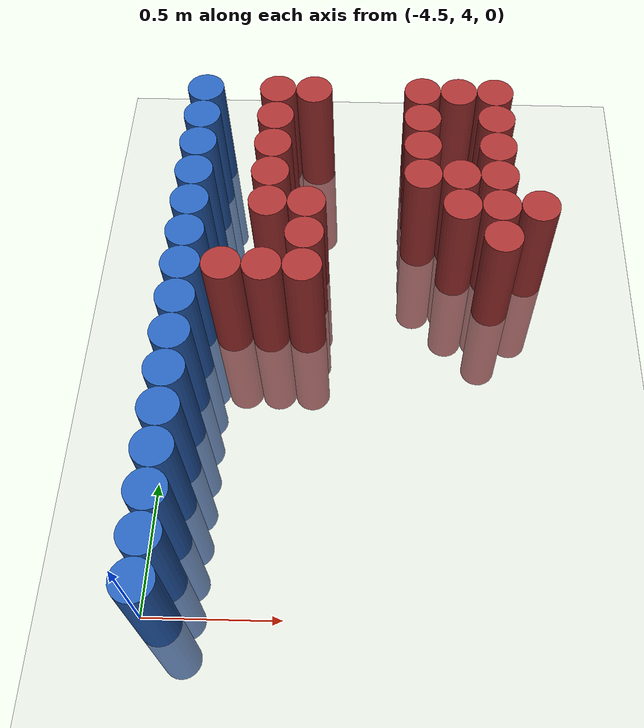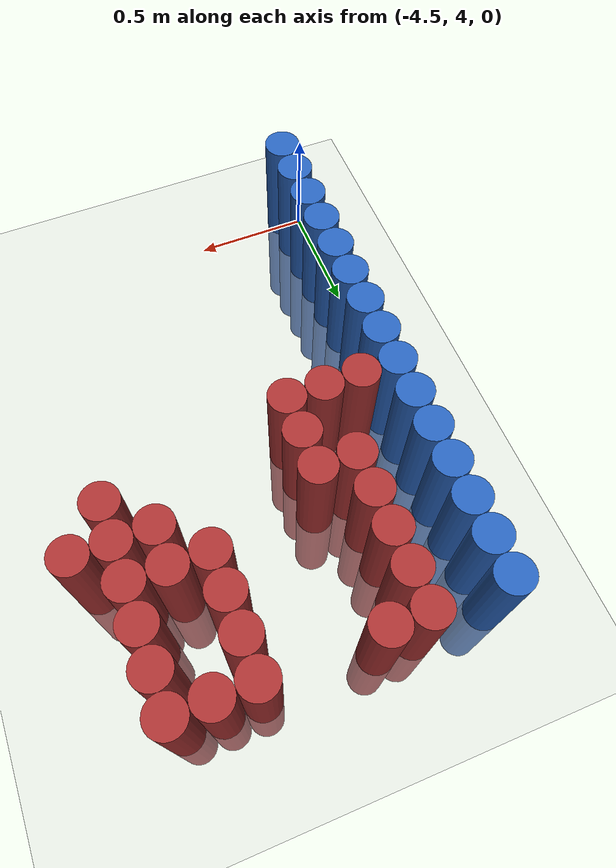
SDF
<sdf version="1.6">
 <world name="default">
  <model name="ground_plane">
   <static>1</static>
   <link name="link">
    <collision name="collision">
     <geometry><plane><normal>0 0 1</normal><size>100 100</size></plane></geometry>
     <surface><friction><ode><mu>100</mu><mu2>50</mu2></ode></friction></surface>
    </collision>
    <visual name="visual">
     <cast_shadows>0</cast_shadows>
     <geometry><plane><normal>0 0 1</normal><size>100 100</size></plane></geometry>
     <material>
      <script><uri>file://media/materials/scripts/gazebo.material</uri><name>Gazebo/Grey</name></script>
     </material>
    </visual>
   </link>
  </model>
  <model name="unit_cylinder_81">
   <static>1</static>
   <pose>-4.425000 3.975000 0.000000 0.000000 0.000000 0.000000</pose>
   <link name="link">
    <inertial>
     <mass>1</mass>
     <inertia><ixx>0.145833</ixx><ixy>0</ixy><ixz>0</ixz><iyy>0.145833</iyy><iyz>0</iyz><izz>0.125</izz></inertia>
    </inertial>
    <collision name="collision">
     <geometry><cylinder><radius>0.075000</radius><length>1</length></cylinder></geometry>
    </collision>
    <visual name="visual">
     <geometry><cylinder><radius>0.075000</radius><length>1</length></cylinder></geometry>
     <material>
      <ambient>0.152000 0.379000 0.720000 1</ambient>
      <diffuse>0.152000 0.379000 0.720000 1</diffuse>
     </material>
     <material>
      <script><name>Gazebo/Grey</name><uri>file://media/materials/scripts/gazebo.material</uri></script>
     </material>
    </visual>
    <sensor name="sensor_contact" type="contact"><contact><collision>collision</collision></contact></sensor>
   </link>
   <plugin filename="gz-sim-touchplugin-system" name="gz::sim::systems::TouchPlugin">
    <target>robot</target>
    <namespace>robot</namespace>
    <time>0.001</time>
    <enabled>true</enabled>
   </plugin>
  </model>
  <model name="unit_cylinder_83">
   <static>1</static>
   <pose>-4.425000 4.125000 0.000000 0.000000 0.000000 0.000000</pose>
   <link name="link">
    <inertial>
     <mass>1</mass>
     <inertia><ixx>0.145833</ixx><ixy>0</ixy><ixz>0</ixz><iyy>0.145833</iyy><iyz>0</iyz><izz>0.125</izz></inertia>
    </inertial>
    <collision name="collision">
     <geometry><cylinder><radius>0.075000</radius><length>1</length></cylinder></geometry>
    </collision>
    <visual name="visual">
     <geometry><cylinder><radius>0.075000</radius><length>1</length></cylinder></geometry>
     <material>
      <ambient>0.152000 0.379000 0.720000 1</ambient>
      <diffuse>0.152000 0.379000 0.720000 1</diffuse>
     </material>
     <material>
      <script><name>Gazebo/Grey</name><uri>file://media/materials/scripts/gazebo.material</uri></script>
     </material>
    </visual>
    <sensor name="sensor_contact" type="contact"><contact><collision>collision</collision></contact></sensor>
   </link>
   <plugin filename="gz-sim-touchplugin-system" name="gz::sim::systems::TouchPlugin">
    <target>robot</target>
    <namespace>robot</namespace>
    <time>0.001</time>
    <enabled>true</enabled>
   </plugin>
  </model>
  <model name="unit_cylinder_85">
   <static>1</static>
   <pose>-4.425000 4.275000 0.000000 0.000000 0.000000 0.000000</pose>
   <link name="link">
    <inertial>
     <mass>1</mass>
     <inertia><ixx>0.145833</ixx><ixy>0</ixy><ixz>0</ixz><iyy>0.145833</iyy><iyz>0</iyz><izz>0.125</izz></inertia>
    </inertial>
    <collision name="collision">
     <geometry><cylinder><radius>0.075000</radius><length>1</length></cylinder></geometry>
    </collision>
    <visual name="visual">
     <geometry><cylinder><radius>0.075000</radius><length>1</length></cylinder></geometry>
     <material>
      <ambient>0.152000 0.379000 0.720000 1</ambient>
      <diffuse>0.152000 0.379000 0.720000 1</diffuse>
     </material>
     <material>
      <script><name>Gazebo/Grey</name><uri>file://media/materials/scripts/gazebo.material</uri></script>
     </material>
    </visual>
    <sensor name="sensor_contact" type="contact"><contact><collision>collision</collision></contact></sensor>
   </link>
   <plugin filename="gz-sim-touchplugin-system" name="gz::sim::systems::TouchPlugin">
    <target>robot</target>
    <namespace>robot</namespace>
    <time>0.001</time>
    <enabled>true</enabled>
   </plugin>
  </model>
  <model name="unit_cylinder_87">
   <static>1</static>
   <pose>-4.425000 4.425000 0.000000 0.000000 0.000000 0.000000</pose>
   <link name="link">
    <inertial>
     <mass>1</mass>
     <inertia><ixx>0.145833</ixx><ixy>0</ixy><ixz>0</ixz><iyy>0.145833</iyy><iyz>0</iyz><izz>0.125</izz></inertia>
    </inertial>
    <collision name="collision">
     <geometry><cylinder><radius>0.075000</radius><length>1</length></cylinder></geometry>
    </collision>
    <visual name="visual">
     <geometry><cylinder><radius>0.075000</radius><length>1</length></cylinder></geometry>
     <material>
      <ambient>0.152000 0.379000 0.720000 1</ambient>
      <diffuse>0.152000 0.379000 0.720000 1</diffuse>
     </material>
     <material>
      <script><name>Gazebo/Grey</name><uri>file://media/materials/scripts/gazebo.material</uri></script>
     </material>
    </visual>
    <sensor name="sensor_contact" type="contact"><contact><collision>collision</collision></contact></sensor>
   </link>
   <plugin filename="gz-sim-touchplugin-system" name="gz::sim::systems::TouchPlugin">
    <target>robot</target>
    <namespace>robot</namespace>
    <time>0.001</time>
    <enabled>true</enabled>
   </plugin>
  </model>
  <model name="unit_cylinder_89">
   <static>1</static>
   <pose>-4.425000 4.575000 0.000000 0.000000 0.000000 0.000000</pose>
   <link name="link">
    <inertial>
     <mass>1</mass>
     <inertia><ixx>0.145833</ixx><ixy>0</ixy><ixz>0</ixz><iyy>0.145833</iyy><iyz>0</iyz><izz>0.125</izz></inertia>
    </inertial>
    <collision name="collision">
     <geometry><cylinder><radius>0.075000</radius><length>1</length></cylinder></geometry>
    </collision>
    <visual name="visual">
     <geometry><cylinder><radius>0.075000</radius><length>1</length></cylinder></geometry>
     <material>
      <ambient>0.152000 0.379000 0.720000 1</ambient>
      <diffuse>0.152000 0.379000 0.720000 1</diffuse>
     </material>
     <material>
      <script><name>Gazebo/Grey</name><uri>file://media/materials/scripts/gazebo.material</uri></script>
     </material>
    </visual>
    <sensor name="sensor_contact" type="contact"><contact><collision>collision</collision></contact></sensor>
   </link>
   <plugin filename="gz-sim-touchplugin-system" name="gz::sim::systems::TouchPlugin">
    <target>robot</target>
    <namespace>robot</namespace>
    <time>0.001</time>
    <enabled>true</enabled>
   </plugin>
  </model>
  <model name="unit_cylinder_91">
   <static>1</static>
   <pose>-4.425000 4.725000 0.000000 0.000000 0.000000 0.000000</pose>
   <link name="link">
    <inertial>
     <mass>1</mass>
     <inertia><ixx>0.145833</ixx><ixy>0</ixy><ixz>0</ixz><iyy>0.145833</iyy><iyz>0</iyz><izz>0.125</izz></inertia>
    </inertial>
    <collision name="collision">
     <geometry><cylinder><radius>0.075000</radius><length>1</length></cylinder></geometry>
    </collision>
    <visual name="visual">
     <geometry><cylinder><radius>0.075000</radius><length>1</length></cylinder></geometry>
     <material>
      <ambient>0.152000 0.379000 0.720000 1</ambient>
      <diffuse>0.152000 0.379000 0.720000 1</diffuse>
     </material>
     <material>
      <script><name>Gazebo/Grey</name><uri>file://media/materials/scripts/gazebo.material</uri></script>
     </material>
    </visual>
    <sensor name="sensor_contact" type="contact"><contact><collision>collision</collision></contact></sensor>
   </link>
   <plugin filename="gz-sim-touchplugin-system" name="gz::sim::systems::TouchPlugin">
    <target>robot</target>
    <namespace>robot</namespace>
    <time>0.001</time>
    <enabled>true</enabled>
   </plugin>
  </model>
  <model name="unit_cylinder_93">
   <static>1</static>
   <pose>-4.425000 4.875000 0.000000 0.000000 0.000000 0.000000</pose>
   <link name="link">
    <inertial>
     <mass>1</mass>
     <inertia><ixx>0.145833</ixx><ixy>0</ixy><ixz>0</ixz><iyy>0.145833</iyy><iyz>0</iyz><izz>0.125</izz></inertia>
    </inertial>
    <collision name="collision">
     <geometry><cylinder><radius>0.075000</radius><length>1</length></cylinder></geometry>
    </collision>
    <visual name="visual">
     <geometry><cylinder><radius>0.075000</radius><length>1</length></cylinder></geometry>
     <material>
      <ambient>0.152000 0.379000 0.720000 1</ambient>
      <diffuse>0.152000 0.379000 0.720000 1</diffuse>
     </material>
     <material>
      <script><name>Gazebo/Grey</name><uri>file://media/materials/scripts/gazebo.material</uri></script>
     </material>
    </visual>
    <sensor name="sensor_contact" type="contact"><contact><collision>collision</collision></contact></sensor>
   </link>
   <plugin filename="gz-sim-touchplugin-system" name="gz::sim::systems::TouchPlugin">
    <target>robot</target>
    <namespace>robot</namespace>
    <time>0.001</time>
    <enabled>true</enabled>
   </plugin>
  </model>
  <model name="unit_cylinder_95">
   <static>1</static>
   <pose>-4.425000 5.025000 0.000000 0.000000 0.000000 0.000000</pose>
   <link name="link">
    <inertial>
     <mass>1</mass>
     <inertia><ixx>0.145833</ixx><ixy>0</ixy><ixz>0</ixz><iyy>0.145833</iyy><iyz>0</iyz><izz>0.125</izz></inertia>
    </inertial>
    <collision name="collision">
     <geometry><cylinder><radius>0.075000</radius><length>1</length></cylinder></geometry>
    </collision>
    <visual name="visual">
     <geometry><cylinder><radius>0.075000</radius><length>1</length></cylinder></geometry>
     <material>
      <ambient>0.152000 0.379000 0.720000 1</ambient>
      <diffuse>0.152000 0.379000 0.720000 1</diffuse>
     </material>
     <material>
      <script><name>Gazebo/Grey</name><uri>file://media/materials/scripts/gazebo.material</uri></script>
     </material>
    </visual>
    <sensor name="sensor_contact" type="contact"><contact><collision>collision</collision></contact></sensor>
   </link>
   <plugin filename="gz-sim-touchplugin-system" name="gz::sim::systems::TouchPlugin">
    <target>robot</target>
    <namespace>robot</namespace>
    <time>0.001</time>
    <enabled>true</enabled>
   </plugin>
  </model>
  <model name="unit_cylinder_96">
   <static>1</static>
   <pose>-4.425000 5.175000 0.000000 0.000000 0.000000 0.000000</pose>
   <link name="link">
    <inertial>
     <mass>1</mass>
     <inertia><ixx>0.145833</ixx><ixy>0</ixy><ixz>0</ixz><iyy>0.145833</iyy><iyz>0</iyz><izz>0.125</izz></inertia>
    </inertial>
    <collision name="collision">
     <geometry><cylinder><radius>0.075000</radius><length>1</length></cylinder></geometry>
    </collision>
    <visual name="visual">
     <geometry><cylinder><radius>0.075000</radius><length>1</length></cylinder></geometry>
     <material>
      <ambient>0.152000 0.379000 0.720000 1</ambient>
      <diffuse>0.152000 0.379000 0.720000 1</diffuse>
     </material>
     <material>
      <script><name>Gazebo/Grey</name><uri>file://media/materials/scripts/gazebo.material</uri></script>
     </material>
    </visual>
    <sensor name="sensor_contact" type="contact"><contact><collision>collision</collision></contact></sensor>
   </link>
   <plugin filename="gz-sim-touchplugin-system" name="gz::sim::systems::TouchPlugin">
    <target>robot</target>
    <namespace>robot</namespace>
    <time>0.001</time>
    <enabled>true</enabled>
   </plugin>
  </model>
  <model name="unit_cylinder_97">
   <static>1</static>
   <pose>-4.425000 5.325000 0.000000 0.000000 0.000000 0.000000</pose>
   <link name="link">
    <inertial>
     <mass>1</mass>
     <inertia><ixx>0.145833</ixx><ixy>0</ixy><ixz>0</ixz><iyy>0.145833</iyy><iyz>0</iyz><izz>0.125</izz></inertia>
    </inertial>
    <collision name="collision">
     <geometry><cylinder><radius>0.075000</radius><length>1</length></cylinder></geometry>
    </collision>
    <visual name="visual">
     <geometry><cylinder><radius>0.075000</radius><length>1</length></cylinder></geometry>
     <material>
      <ambient>0.152000 0.379000 0.720000 1</ambient>
      <diffuse>0.152000 0.379000 0.720000 1</diffuse>
     </material>
     <material>
      <script><name>Gazebo/Grey</name><uri>file://media/materials/scripts/gazebo.material</uri></script>
     </material>
    </visual>
    <sensor name="sensor_contact" type="contact"><contact><collision>collision</collision></contact></sensor>
   </link>
   <plugin filename="gz-sim-touchplugin-system" name="gz::sim::systems::TouchPlugin">
    <target>robot</target>
    <namespace>robot</namespace>
    <time>0.001</time>
    <enabled>true</enabled>
   </plugin>
  </model>
  <model name="unit_cylinder_98">
   <static>1</static>
   <pose>-4.425000 5.475000 0.000000 0.000000 0.000000 0.000000</pose>
   <link name="link">
    <inertial>
     <mass>1</mass>
     <inertia><ixx>0.145833</ixx><ixy>0</ixy><ixz>0</ixz><iyy>0.145833</iyy><iyz>0</iyz><izz>0.125</izz></inertia>
    </inertial>
    <collision name="collision">
     <geometry><cylinder><radius>0.075000</radius><length>1</length></cylinder></geometry>
    </collision>
    <visual name="visual">
     <geometry><cylinder><radius>0.075000</radius><length>1</length></cylinder></geometry>
     <material>
      <ambient>0.152000 0.379000 0.720000 1</ambient>
      <diffuse>0.152000 0.379000 0.720000 1</diffuse>
     </material>
     <material>
      <script><name>Gazebo/Grey</name><uri>file://media/materials/scripts/gazebo.material</uri></script>
     </material>
    </visual>
    <sensor name="sensor_contact" type="contact"><contact><collision>collision</collision></contact></sensor>
   </link>
   <plugin filename="gz-sim-touchplugin-system" name="gz::sim::systems::TouchPlugin">
    <target>robot</target>
    <namespace>robot</namespace>
    <time>0.001</time>
    <enabled>true</enabled>
   </plugin>
  </model>
  <model name="unit_cylinder_99">
   <static>1</static>
   <pose>-4.425000 5.625000 0.000000 0.000000 0.000000 0.000000</pose>
   <link name="link">
    <inertial>
     <mass>1</mass>
     <inertia><ixx>0.145833</ixx><ixy>0</ixy><ixz>0</ixz><iyy>0.145833</iyy><iyz>0</iyz><izz>0.125</izz></inertia>
    </inertial>
    <collision name="collision">
     <geometry><cylinder><radius>0.075000</radius><length>1</length></cylinder></geometry>
    </collision>
    <visual name="visual">
     <geometry><cylinder><radius>0.075000</radius><length>1</length></cylinder></geometry>
     <material>
      <ambient>0.152000 0.379000 0.720000 1</ambient>
      <diffuse>0.152000 0.379000 0.720000 1</diffuse>
     </material>
     <material>
      <script><name>Gazebo/Grey</name><uri>file://media/materials/scripts/gazebo.material</uri></script>
     </material>
    </visual>
    <sensor name="sensor_contact" type="contact"><contact><collision>collision</collision></contact></sensor>
   </link>
   <plugin filename="gz-sim-touchplugin-system" name="gz::sim::systems::TouchPlugin">
    <target>robot</target>
    <namespace>robot</namespace>
    <time>0.001</time>
    <enabled>true</enabled>
   </plugin>
  </model>
  <model name="unit_cylinder_100">
   <static>1</static>
   <pose>-4.425000 5.775000 0.000000 0.000000 0.000000 0.000000</pose>
   <link name="link">
    <inertial>
     <mass>1</mass>
     <inertia><ixx>0.145833</ixx><ixy>0</ixy><ixz>0</ixz><iyy>0.145833</iyy><iyz>0</iyz><izz>0.125</izz></inertia>
    </inertial>
    <collision name="collision">
     <geometry><cylinder><radius>0.075000</radius><length>1</length></cylinder></geometry>
    </collision>
    <visual name="visual">
     <geometry><cylinder><radius>0.075000</radius><length>1</length></cylinder></geometry>
     <material>
      <ambient>0.152000 0.379000 0.720000 1</ambient>
      <diffuse>0.152000 0.379000 0.720000 1</diffuse>
     </material>
     <material>
      <script><name>Gazebo/Grey</name><uri>file://media/materials/scripts/gazebo.material</uri></script>
     </material>
    </visual>
    <sensor name="sensor_contact" type="contact"><contact><collision>collision</collision></contact></sensor>
   </link>
   <plugin filename="gz-sim-touchplugin-system" name="gz::sim::systems::TouchPlugin">
    <target>robot</target>
    <namespace>robot</namespace>
    <time>0.001</time>
    <enabled>true</enabled>
   </plugin>
  </model>
  <model name="unit_cylinder_101">
   <static>1</static>
   <pose>-4.425000 5.925000 0.000000 0.000000 0.000000 0.000000</pose>
   <link name="link">
    <inertial>
     <mass>1</mass>
     <inertia><ixx>0.145833</ixx><ixy>0</ixy><ixz>0</ixz><iyy>0.145833</iyy><iyz>0</iyz><izz>0.125</izz></inertia>
    </inertial>
    <collision name="collision">
     <geometry><cylinder><radius>0.075000</radius><length>1</length></cylinder></geometry>
    </collision>
    <visual name="visual">
     <geometry><cylinder><radius>0.075000</radius><length>1</length></cylinder></geometry>
     <material>
      <ambient>0.152000 0.379000 0.720000 1</ambient>
      <diffuse>0.152000 0.379000 0.720000 1</diffuse>
     </material>
     <material>
      <script><name>Gazebo/Grey</name><uri>file://media/materials/scripts/gazebo.material</uri></script>
     </material>
    </visual>
    <sensor name="sensor_contact" type="contact"><contact><collision>collision</collision></contact></sensor>
   </link>
   <plugin filename="gz-sim-touchplugin-system" name="gz::sim::systems::TouchPlugin">
    <target>robot</target>
    <namespace>robot</namespace>
    <time>0.001</time>
    <enabled>true</enabled>
   </plugin>
  </model>
  <model name="unit_cylinder_102">
   <static>1</static>
   <pose>-4.425000 6.075000 0.000000 0.000000 0.000000 0.000000</pose>
   <link name="link">
    <inertial>
     <mass>1</mass>
     <inertia><ixx>0.145833</ixx><ixy>0</ixy><ixz>0</ixz><iyy>0.145833</iyy><iyz>0</iyz><izz>0.125</izz></inertia>
    </inertial>
    <collision name="collision">
     <geometry><cylinder><radius>0.075000</radius><length>1</length></cylinder></geometry>
    </collision>
    <visual name="visual">
     <geometry><cylinder><radius>0.075000</radius><length>1</length></cylinder></geometry>
     <material>
      <ambient>0.152000 0.379000 0.720000 1</ambient>
      <diffuse>0.152000 0.379000 0.720000 1</diffuse>
     </material>
     <material>
      <script><name>Gazebo/Grey</name><uri>file://media/materials/scripts/gazebo.material</uri></script>
     </material>
    </visual>
    <sensor name="sensor_contact" type="contact"><contact><collision>collision</collision></contact></sensor>
   </link>
   <plugin filename="gz-sim-touchplugin-system" name="gz::sim::systems::TouchPlugin">
    <target>robot</target>
    <namespace>robot</namespace>
    <time>0.001</time>
    <enabled>true</enabled>
   </plugin>
  </model>
  <model name="unit_cylinder_126">
   <static>1</static>
   <pose>-4.275000 5.175000 0.000000 0.000000 0.000000 0.000000</pose>
   <link name="link">
    <inertial>
     <mass>1</mass>
     <inertia><ixx>0.145833</ixx><ixy>0</ixy><ixz>0</ixz><iyy>0.145833</iyy><iyz>0</iyz><izz>0.125</izz></inertia>
    </inertial>
    <collision name="collision">
     <geometry><cylinder><radius>0.075000</radius><length>1</length></cylinder></geometry>
    </collision>
    <visual name="visual">
     <geometry><cylinder><radius>0.075000</radius><length>1</length></cylinder></geometry>
     <material>
      <ambient>0.648000 0.192000 0.192000 1</ambient>
      <diffuse>0.648000 0.192000 0.192000 1</diffuse>
     </material>
     <material>
      <script><name>Gazebo/Grey</name><uri>file://media/materials/scripts/gazebo.material</uri></script>
     </material>
    </visual>
    <sensor name="sensor_contact" type="contact"><contact><collision>collision</collision></contact></sensor>
   </link>
   <plugin filename="gz-sim-touchplugin-system" name="gz::sim::systems::TouchPlugin">
    <target>robot</target>
    <namespace>robot</namespace>
    <time>0.001</time>
    <enabled>true</enabled>
   </plugin>
  </model>
  <model name="unit_cylinder_138">
   <static>1</static>
   <pose>-4.125000 5.175000 0.000000 0.000000 0.000000 0.000000</pose>
   <link name="link">
    <inertial>
     <mass>1</mass>
     <inertia><ixx>0.145833</ixx><ixy>0</ixy><ixz>0</ixz><iyy>0.145833</iyy><iyz>0</iyz><izz>0.125</izz></inertia>
    </inertial>
    <collision name="collision">
     <geometry><cylinder><radius>0.075000</radius><length>1</length></cylinder></geometry>
    </collision>
    <visual name="visual">
     <geometry><cylinder><radius>0.075000</radius><length>1</length></cylinder></geometry>
     <material>
      <ambient>0.648000 0.192000 0.192000 1</ambient>
      <diffuse>0.648000 0.192000 0.192000 1</diffuse>
     </material>
     <material>
      <script><name>Gazebo/Grey</name><uri>file://media/materials/scripts/gazebo.material</uri></script>
     </material>
    </visual>
    <sensor name="sensor_contact" type="contact"><contact><collision>collision</collision></contact></sensor>
   </link>
   <plugin filename="gz-sim-touchplugin-system" name="gz::sim::systems::TouchPlugin">
    <target>robot</target>
    <namespace>robot</namespace>
    <time>0.001</time>
    <enabled>true</enabled>
   </plugin>
  </model>
  <model name="unit_cylinder_139">
   <static>1</static>
   <pose>-4.125000 5.475000 0.000000 0.000000 0.000000 0.000000</pose>
   <link name="link">
    <inertial>
     <mass>1</mass>
     <inertia><ixx>0.145833</ixx><ixy>0</ixy><ixz>0</ixz><iyy>0.145833</iyy><iyz>0</iyz><izz>0.125</izz></inertia>
    </inertial>
    <collision name="collision">
     <geometry><cylinder><radius>0.075000</radius><length>1</length></cylinder></geometry>
    </collision>
    <visual name="visual">
     <geometry><cylinder><radius>0.075000</radius><length>1</length></cylinder></geometry>
     <material>
      <ambient>0.648000 0.192000 0.192000 1</ambient>
      <diffuse>0.648000 0.192000 0.192000 1</diffuse>
     </material>
     <material>
      <script><name>Gazebo/Grey</name><uri>file://media/materials/scripts/gazebo.material</uri></script>
     </material>
    </visual>
    <sensor name="sensor_contact" type="contact"><contact><collision>collision</collision></contact></sensor>
   </link>
   <plugin filename="gz-sim-touchplugin-system" name="gz::sim::systems::TouchPlugin">
    <target>robot</target>
    <namespace>robot</namespace>
    <time>0.001</time>
    <enabled>true</enabled>
   </plugin>
  </model>
  <model name="unit_cylinder_140">
   <static>1</static>
   <pose>-4.125000 5.625000 0.000000 0.000000 0.000000 0.000000</pose>
   <link name="link">
    <inertial>
     <mass>1</mass>
     <inertia><ixx>0.145833</ixx><ixy>0</ixy><ixz>0</ixz><iyy>0.145833</iyy><iyz>0</iyz><izz>0.125</izz></inertia>
    </inertial>
    <collision name="collision">
     <geometry><cylinder><radius>0.075000</radius><length>1</length></cylinder></geometry>
    </collision>
    <visual name="visual">
     <geometry><cylinder><radius>0.075000</radius><length>1</length></cylinder></geometry>
     <material>
      <ambient>0.648000 0.192000 0.192000 1</ambient>
      <diffuse>0.648000 0.192000 0.192000 1</diffuse>
     </material>
     <material>
      <script><name>Gazebo/Grey</name><uri>file://media/materials/scripts/gazebo.material</uri></script>
     </material>
    </visual>
    <sensor name="sensor_contact" type="contact"><contact><collision>collision</collision></contact></sensor>
   </link>
   <plugin filename="gz-sim-touchplugin-system" name="gz::sim::systems::TouchPlugin">
    <target>robot</target>
    <namespace>robot</namespace>
    <time>0.001</time>
    <enabled>true</enabled>
   </plugin>
  </model>
  <model name="unit_cylinder_141">
   <static>1</static>
   <pose>-4.125000 5.775000 0.000000 0.000000 0.000000 0.000000</pose>
   <link name="link">
    <inertial>
     <mass>1</mass>
     <inertia><ixx>0.145833</ixx><ixy>0</ixy><ixz>0</ixz><iyy>0.145833</iyy><iyz>0</iyz><izz>0.125</izz></inertia>
    </inertial>
    <collision name="collision">
     <geometry><cylinder><radius>0.075000</radius><length>1</length></cylinder></geometry>
    </collision>
    <visual name="visual">
     <geometry><cylinder><radius>0.075000</radius><length>1</length></cylinder></geometry>
     <material>
      <ambient>0.648000 0.192000 0.192000 1</ambient>
      <diffuse>0.648000 0.192000 0.192000 1</diffuse>
     </material>
     <material>
      <script><name>Gazebo/Grey</name><uri>file://media/materials/scripts/gazebo.material</uri></script>
     </material>
    </visual>
    <sensor name="sensor_contact" type="contact"><contact><collision>collision</collision></contact></sensor>
   </link>
   <plugin filename="gz-sim-touchplugin-system" name="gz::sim::systems::TouchPlugin">
    <target>robot</target>
    <namespace>robot</namespace>
    <time>0.001</time>
    <enabled>true</enabled>
   </plugin>
  </model>
  <model name="unit_cylinder_142">
   <static>1</static>
   <pose>-4.125000 5.925000 0.000000 0.000000 0.000000 0.000000</pose>
   <link name="link">
    <inertial>
     <mass>1</mass>
     <inertia><ixx>0.145833</ixx><ixy>0</ixy><ixz>0</ixz><iyy>0.145833</iyy><iyz>0</iyz><izz>0.125</izz></inertia>
    </inertial>
    <collision name="collision">
     <geometry><cylinder><radius>0.075000</radius><length>1</length></cylinder></geometry>
    </collision>
    <visual name="visual">
     <geometry><cylinder><radius>0.075000</radius><length>1</length></cylinder></geometry>
     <material>
      <ambient>0.648000 0.192000 0.192000 1</ambient>
      <diffuse>0.648000 0.192000 0.192000 1</diffuse>
     </material>
     <material>
      <script><name>Gazebo/Grey</name><uri>file://media/materials/scripts/gazebo.material</uri></script>
     </material>
    </visual>
    <sensor name="sensor_contact" type="contact"><contact><collision>collision</collision></contact></sensor>
   </link>
   <plugin filename="gz-sim-touchplugin-system" name="gz::sim::systems::TouchPlugin">
    <target>robot</target>
    <namespace>robot</namespace>
    <time>0.001</time>
    <enabled>true</enabled>
   </plugin>
  </model>
  <model name="unit_cylinder_143">
   <static>1</static>
   <pose>-4.125000 6.075000 0.000000 0.000000 0.000000 0.000000</pose>
   <link name="link">
    <inertial>
     <mass>1</mass>
     <inertia><ixx>0.145833</ixx><ixy>0</ixy><ixz>0</ixz><iyy>0.145833</iyy><iyz>0</iyz><izz>0.125</izz></inertia>
    </inertial>
    <collision name="collision">
     <geometry><cylinder><radius>0.075000</radius><length>1</length></cylinder></geometry>
    </collision>
    <visual name="visual">
     <geometry><cylinder><radius>0.075000</radius><length>1</length></cylinder></geometry>
     <material>
      <ambient>0.648000 0.192000 0.192000 1</ambient>
      <diffuse>0.648000 0.192000 0.192000 1</diffuse>
     </material>
     <material>
      <script><name>Gazebo/Grey</name><uri>file://media/materials/scripts/gazebo.material</uri></script>
     </material>
    </visual>
    <sensor name="sensor_contact" type="contact"><contact><collision>collision</collision></contact></sensor>
   </link>
   <plugin filename="gz-sim-touchplugin-system" name="gz::sim::systems::TouchPlugin">
    <target>robot</target>
    <namespace>robot</namespace>
    <time>0.001</time>
    <enabled>true</enabled>
   </plugin>
  </model>
  <model name="unit_cylinder_150">
   <static>1</static>
   <pose>-3.975000 5.175000 0.000000 0.000000 0.000000 0.000000</pose>
   <link name="link">
    <inertial>
     <mass>1</mass>
     <inertia><ixx>0.145833</ixx><ixy>0</ixy><ixz>0</ixz><iyy>0.145833</iyy><iyz>0</iyz><izz>0.125</izz></inertia>
    </inertial>
    <collision name="collision">
     <geometry><cylinder><radius>0.075000</radius><length>1</length></cylinder></geometry>
    </collision>
    <visual name="visual">
     <geometry><cylinder><radius>0.075000</radius><length>1</length></cylinder></geometry>
     <material>
      <ambient>0.648000 0.192000 0.192000 1</ambient>
      <diffuse>0.648000 0.192000 0.192000 1</diffuse>
     </material>
     <material>
      <script><name>Gazebo/Grey</name><uri>file://media/materials/scripts/gazebo.material</uri></script>
     </material>
    </visual>
    <sensor name="sensor_contact" type="contact"><contact><collision>collision</collision></contact></sensor>
   </link>
   <plugin filename="gz-sim-touchplugin-system" name="gz::sim::systems::TouchPlugin">
    <target>robot</target>
    <namespace>robot</namespace>
    <time>0.001</time>
    <enabled>true</enabled>
   </plugin>
  </model>
  <model name="unit_cylinder_151">
   <static>1</static>
   <pose>-3.975000 5.325000 0.000000 0.000000 0.000000 0.000000</pose>
   <link name="link">
    <inertial>
     <mass>1</mass>
     <inertia><ixx>0.145833</ixx><ixy>0</ixy><ixz>0</ixz><iyy>0.145833</iyy><iyz>0</iyz><izz>0.125</izz></inertia>
    </inertial>
    <collision name="collision">
     <geometry><cylinder><radius>0.075000</radius><length>1</length></cylinder></geometry>
    </collision>
    <visual name="visual">
     <geometry><cylinder><radius>0.075000</radius><length>1</length></cylinder></geometry>
     <material>
      <ambient>0.648000 0.192000 0.192000 1</ambient>
      <diffuse>0.648000 0.192000 0.192000 1</diffuse>
     </material>
     <material>
      <script><name>Gazebo/Grey</name><uri>file://media/materials/scripts/gazebo.material</uri></script>
     </material>
    </visual>
    <sensor name="sensor_contact" type="contact"><contact><collision>collision</collision></contact></sensor>
   </link>
   <plugin filename="gz-sim-touchplugin-system" name="gz::sim::systems::TouchPlugin">
    <target>robot</target>
    <namespace>robot</namespace>
    <time>0.001</time>
    <enabled>true</enabled>
   </plugin>
  </model>
  <model name="unit_cylinder_152">
   <static>1</static>
   <pose>-3.975000 5.475000 0.000000 0.000000 0.000000 0.000000</pose>
   <link name="link">
    <inertial>
     <mass>1</mass>
     <inertia><ixx>0.145833</ixx><ixy>0</ixy><ixz>0</ixz><iyy>0.145833</iyy><iyz>0</iyz><izz>0.125</izz></inertia>
    </inertial>
    <collision name="collision">
     <geometry><cylinder><radius>0.075000</radius><length>1</length></cylinder></geometry>
    </collision>
    <visual name="visual">
     <geometry><cylinder><radius>0.075000</radius><length>1</length></cylinder></geometry>
     <material>
      <ambient>0.648000 0.192000 0.192000 1</ambient>
      <diffuse>0.648000 0.192000 0.192000 1</diffuse>
     </material>
     <material>
      <script><name>Gazebo/Grey</name><uri>file://media/materials/scripts/gazebo.material</uri></script>
     </material>
    </visual>
    <sensor name="sensor_contact" type="contact"><contact><collision>collision</collision></contact></sensor>
   </link>
   <plugin filename="gz-sim-touchplugin-system" name="gz::sim::systems::TouchPlugin">
    <target>robot</target>
    <namespace>robot</namespace>
    <time>0.001</time>
    <enabled>true</enabled>
   </plugin>
  </model>
  <model name="unit_cylinder_153">
   <static>1</static>
   <pose>-3.975000 6.075000 0.000000 0.000000 0.000000 0.000000</pose>
   <link name="link">
    <inertial>
     <mass>1</mass>
     <inertia><ixx>0.145833</ixx><ixy>0</ixy><ixz>0</ixz><iyy>0.145833</iyy><iyz>0</iyz><izz>0.125</izz></inertia>
    </inertial>
    <collision name="collision">
     <geometry><cylinder><radius>0.075000</radius><length>1</length></cylinder></geometry>
    </collision>
    <visual name="visual">
     <geometry><cylinder><radius>0.075000</radius><length>1</length></cylinder></geometry>
     <material>
      <ambient>0.648000 0.192000 0.192000 1</ambient>
      <diffuse>0.648000 0.192000 0.192000 1</diffuse>
     </material>
     <material>
      <script><name>Gazebo/Grey</name><uri>file://media/materials/scripts/gazebo.material</uri></script>
     </material>
    </visual>
    <sensor name="sensor_contact" type="contact"><contact><collision>collision</collision></contact></sensor>
   </link>
   <plugin filename="gz-sim-touchplugin-system" name="gz::sim::systems::TouchPlugin">
    <target>robot</target>
    <namespace>robot</namespace>
    <time>0.001</time>
    <enabled>true</enabled>
   </plugin>
  </model>
  <model name="unit_cylinder_172">
   <static>1</static>
   <pose>-3.525000 5.625000 0.000000 0.000000 0.000000 0.000000</pose>
   <link name="link">
    <inertial>
     <mass>1</mass>
     <inertia><ixx>0.145833</ixx><ixy>0</ixy><ixz>0</ixz><iyy>0.145833</iyy><iyz>0</iyz><izz>0.125</izz></inertia>
    </inertial>
    <collision name="collision">
     <geometry><cylinder><radius>0.075000</radius><length>1</length></cylinder></geometry>
    </collision>
    <visual name="visual">
     <geometry><cylinder><radius>0.075000</radius><length>1</length></cylinder></geometry>
     <material>
      <ambient>0.648000 0.192000 0.192000 1</ambient>
      <diffuse>0.648000 0.192000 0.192000 1</diffuse>
     </material>
     <material>
      <script><name>Gazebo/Grey</name><uri>file://media/materials/scripts/gazebo.material</uri></script>
     </material>
    </visual>
    <sensor name="sensor_contact" type="contact"><contact><collision>collision</collision></contact></sensor>
   </link>
   <plugin filename="gz-sim-touchplugin-system" name="gz::sim::systems::TouchPlugin">
    <target>robot</target>
    <namespace>robot</namespace>
    <time>0.001</time>
    <enabled>true</enabled>
   </plugin>
  </model>
  <model name="unit_cylinder_173">
   <static>1</static>
   <pose>-3.525000 5.775000 0.000000 0.000000 0.000000 0.000000</pose>
   <link name="link">
    <inertial>
     <mass>1</mass>
     <inertia><ixx>0.145833</ixx><ixy>0</ixy><ixz>0</ixz><iyy>0.145833</iyy><iyz>0</iyz><izz>0.125</izz></inertia>
    </inertial>
    <collision name="collision">
     <geometry><cylinder><radius>0.075000</radius><length>1</length></cylinder></geometry>
    </collision>
    <visual name="visual">
     <geometry><cylinder><radius>0.075000</radius><length>1</length></cylinder></geometry>
     <material>
      <ambient>0.648000 0.192000 0.192000 1</ambient>
      <diffuse>0.648000 0.192000 0.192000 1</diffuse>
     </material>
     <material>
      <script><name>Gazebo/Grey</name><uri>file://media/materials/scripts/gazebo.material</uri></script>
     </material>
    </visual>
    <sensor name="sensor_contact" type="contact"><contact><collision>collision</collision></contact></sensor>
   </link>
   <plugin filename="gz-sim-touchplugin-system" name="gz::sim::systems::TouchPlugin">
    <target>robot</target>
    <namespace>robot</namespace>
    <time>0.001</time>
    <enabled>true</enabled>
   </plugin>
  </model>
  <model name="unit_cylinder_174">
   <static>1</static>
   <pose>-3.525000 5.925000 0.000000 0.000000 0.000000 0.000000</pose>
   <link name="link">
    <inertial>
     <mass>1</mass>
     <inertia><ixx>0.145833</ixx><ixy>0</ixy><ixz>0</ixz><iyy>0.145833</iyy><iyz>0</iyz><izz>0.125</izz></inertia>
    </inertial>
    <collision name="collision">
     <geometry><cylinder><radius>0.075000</radius><length>1</length></cylinder></geometry>
    </collision>
    <visual name="visual">
     <geometry><cylinder><radius>0.075000</radius><length>1</length></cylinder></geometry>
     <material>
      <ambient>0.648000 0.192000 0.192000 1</ambient>
      <diffuse>0.648000 0.192000 0.192000 1</diffuse>
     </material>
     <material>
      <script><name>Gazebo/Grey</name><uri>file://media/materials/scripts/gazebo.material</uri></script>
     </material>
    </visual>
    <sensor name="sensor_contact" type="contact"><contact><collision>collision</collision></contact></sensor>
   </link>
   <plugin filename="gz-sim-touchplugin-system" name="gz::sim::systems::TouchPlugin">
    <target>robot</target>
    <namespace>robot</namespace>
    <time>0.001</time>
    <enabled>true</enabled>
   </plugin>
  </model>
  <model name="unit_cylinder_175">
   <static>1</static>
   <pose>-3.525000 6.075000 0.000000 0.000000 0.000000 0.000000</pose>
   <link name="link">
    <inertial>
     <mass>1</mass>
     <inertia><ixx>0.145833</ixx><ixy>0</ixy><ixz>0</ixz><iyy>0.145833</iyy><iyz>0</iyz><izz>0.125</izz></inertia>
    </inertial>
    <collision name="collision">
     <geometry><cylinder><radius>0.075000</radius><length>1</length></cylinder></geometry>
    </collision>
    <visual name="visual">
     <geometry><cylinder><radius>0.075000</radius><length>1</length></cylinder></geometry>
     <material>
      <ambient>0.648000 0.192000 0.192000 1</ambient>
      <diffuse>0.648000 0.192000 0.192000 1</diffuse>
     </material>
     <material>
      <script><name>Gazebo/Grey</name><uri>file://media/materials/scripts/gazebo.material</uri></script>
     </material>
    </visual>
    <sensor name="sensor_contact" type="contact"><contact><collision>collision</collision></contact></sensor>
   </link>
   <plugin filename="gz-sim-touchplugin-system" name="gz::sim::systems::TouchPlugin">
    <target>robot</target>
    <namespace>robot</namespace>
    <time>0.001</time>
    <enabled>true</enabled>
   </plugin>
  </model>
  <model name="unit_cylinder_182">
   <static>1</static>
   <pose>-3.375000 5.475000 0.000000 0.000000 0.000000 0.000000</pose>
   <link name="link">
    <inertial>
     <mass>1</mass>
     <inertia><ixx>0.145833</ixx><ixy>0</ixy><ixz>0</ixz><iyy>0.145833</iyy><iyz>0</iyz><izz>0.125</izz></inertia>
    </inertial>
    <collision name="collision">
     <geometry><cylinder><radius>0.075000</radius><length>1</length></cylinder></geometry>
    </collision>
    <visual name="visual">
     <geometry><cylinder><radius>0.075000</radius><length>1</length></cylinder></geometry>
     <material>
      <ambient>0.648000 0.192000 0.192000 1</ambient>
      <diffuse>0.648000 0.192000 0.192000 1</diffuse>
     </material>
     <material>
      <script><name>Gazebo/Grey</name><uri>file://media/materials/scripts/gazebo.material</uri></script>
     </material>
    </visual>
    <sensor name="sensor_contact" type="contact"><contact><collision>collision</collision></contact></sensor>
   </link>
   <plugin filename="gz-sim-touchplugin-system" name="gz::sim::systems::TouchPlugin">
    <target>robot</target>
    <namespace>robot</namespace>
    <time>0.001</time>
    <enabled>true</enabled>
   </plugin>
  </model>
  <model name="unit_cylinder_183">
   <static>1</static>
   <pose>-3.375000 5.625000 0.000000 0.000000 0.000000 0.000000</pose>
   <link name="link">
    <inertial>
     <mass>1</mass>
     <inertia><ixx>0.145833</ixx><ixy>0</ixy><ixz>0</ixz><iyy>0.145833</iyy><iyz>0</iyz><izz>0.125</izz></inertia>
    </inertial>
    <collision name="collision">
     <geometry><cylinder><radius>0.075000</radius><length>1</length></cylinder></geometry>
    </collision>
    <visual name="visual">
     <geometry><cylinder><radius>0.075000</radius><length>1</length></cylinder></geometry>
     <material>
      <ambient>0.648000 0.192000 0.192000 1</ambient>
      <diffuse>0.648000 0.192000 0.192000 1</diffuse>
     </material>
     <material>
      <script><name>Gazebo/Grey</name><uri>file://media/materials/scripts/gazebo.material</uri></script>
     </material>
    </visual>
    <sensor name="sensor_contact" type="contact"><contact><collision>collision</collision></contact></sensor>
   </link>
   <plugin filename="gz-sim-touchplugin-system" name="gz::sim::systems::TouchPlugin">
    <target>robot</target>
    <namespace>robot</namespace>
    <time>0.001</time>
    <enabled>true</enabled>
   </plugin>
  </model>
  <model name="unit_cylinder_184">
   <static>1</static>
   <pose>-3.375000 6.075000 0.000000 0.000000 0.000000 0.000000</pose>
   <link name="link">
    <inertial>
     <mass>1</mass>
     <inertia><ixx>0.145833</ixx><ixy>0</ixy><ixz>0</ixz><iyy>0.145833</iyy><iyz>0</iyz><izz>0.125</izz></inertia>
    </inertial>
    <collision name="collision">
     <geometry><cylinder><radius>0.075000</radius><length>1</length></cylinder></geometry>
    </collision>
    <visual name="visual">
     <geometry><cylinder><radius>0.075000</radius><length>1</length></cylinder></geometry>
     <material>
      <ambient>0.648000 0.192000 0.192000 1</ambient>
      <diffuse>0.648000 0.192000 0.192000 1</diffuse>
     </material>
     <material>
      <script><name>Gazebo/Grey</name><uri>file://media/materials/scripts/gazebo.material</uri></script>
     </material>
    </visual>
    <sensor name="sensor_contact" type="contact"><contact><collision>collision</collision></contact></sensor>
   </link>
   <plugin filename="gz-sim-touchplugin-system" name="gz::sim::systems::TouchPlugin">
    <target>robot</target>
    <namespace>robot</namespace>
    <time>0.001</time>
    <enabled>true</enabled>
   </plugin>
  </model>
  <model name="unit_cylinder_190">
   <static>1</static>
   <pose>-3.225000 5.325000 0.000000 0.000000 0.000000 0.000000</pose>
   <link name="link">
    <inertial>
     <mass>1</mass>
     <inertia><ixx>0.145833</ixx><ixy>0</ixy><ixz>0</ixz><iyy>0.145833</iyy><iyz>0</iyz><izz>0.125</izz></inertia>
    </inertial>
    <collision name="collision">
     <geometry><cylinder><radius>0.075000</radius><length>1</length></cylinder></geometry>
    </collision>
    <visual name="visual">
     <geometry><cylinder><radius>0.075000</radius><length>1</length></cylinder></geometry>
     <material>
      <ambient>0.648000 0.192000 0.192000 1</ambient>
      <diffuse>0.648000 0.192000 0.192000 1</diffuse>
     </material>
     <material>
      <script><name>Gazebo/Grey</name><uri>file://media/materials/scripts/gazebo.material</uri></script>
     </material>
    </visual>
    <sensor name="sensor_contact" type="contact"><contact><collision>collision</collision></contact></sensor>
   </link>
   <plugin filename="gz-sim-touchplugin-system" name="gz::sim::systems::TouchPlugin">
    <target>robot</target>
    <namespace>robot</namespace>
    <time>0.001</time>
    <enabled>true</enabled>
   </plugin>
  </model>
  <model name="unit_cylinder_191">
   <static>1</static>
   <pose>-3.225000 5.475000 0.000000 0.000000 0.000000 0.000000</pose>
   <link name="link">
    <inertial>
     <mass>1</mass>
     <inertia><ixx>0.145833</ixx><ixy>0</ixy><ixz>0</ixz><iyy>0.145833</iyy><iyz>0</iyz><izz>0.125</izz></inertia>
    </inertial>
    <collision name="collision">
     <geometry><cylinder><radius>0.075000</radius><length>1</length></cylinder></geometry>
    </collision>
    <visual name="visual">
     <geometry><cylinder><radius>0.075000</radius><length>1</length></cylinder></geometry>
     <material>
      <ambient>0.648000 0.192000 0.192000 1</ambient>
      <diffuse>0.648000 0.192000 0.192000 1</diffuse>
     </material>
     <material>
      <script><name>Gazebo/Grey</name><uri>file://media/materials/scripts/gazebo.material</uri></script>
     </material>
    </visual>
    <sensor name="sensor_contact" type="contact"><contact><collision>collision</collision></contact></sensor>
   </link>
   <plugin filename="gz-sim-touchplugin-system" name="gz::sim::systems::TouchPlugin">
    <target>robot</target>
    <namespace>robot</namespace>
    <time>0.001</time>
    <enabled>true</enabled>
   </plugin>
  </model>
  <model name="unit_cylinder_192">
   <static>1</static>
   <pose>-3.225000 5.625000 0.000000 0.000000 0.000000 0.000000</pose>
   <link name="link">
    <inertial>
     <mass>1</mass>
     <inertia><ixx>0.145833</ixx><ixy>0</ixy><ixz>0</ixz><iyy>0.145833</iyy><iyz>0</iyz><izz>0.125</izz></inertia>
    </inertial>
    <collision name="collision">
     <geometry><cylinder><radius>0.075000</radius><length>1</length></cylinder></geometry>
    </collision>
    <visual name="visual">
     <geometry><cylinder><radius>0.075000</radius><length>1</length></cylinder></geometry>
     <material>
      <ambient>0.648000 0.192000 0.192000 1</ambient>
      <diffuse>0.648000 0.192000 0.192000 1</diffuse>
     </material>
     <material>
      <script><name>Gazebo/Grey</name><uri>file://media/materials/scripts/gazebo.material</uri></script>
     </material>
    </visual>
    <sensor name="sensor_contact" type="contact"><contact><collision>collision</collision></contact></sensor>
   </link>
   <plugin filename="gz-sim-touchplugin-system" name="gz::sim::systems::TouchPlugin">
    <target>robot</target>
    <namespace>robot</namespace>
    <time>0.001</time>
    <enabled>true</enabled>
   </plugin>
  </model>
  <model name="unit_cylinder_193">
   <static>1</static>
   <pose>-3.225000 5.775000 0.000000 0.000000 0.000000 0.000000</pose>
   <link name="link">
    <inertial>
     <mass>1</mass>
     <inertia><ixx>0.145833</ixx><ixy>0</ixy><ixz>0</ixz><iyy>0.145833</iyy><iyz>0</iyz><izz>0.125</izz></inertia>
    </inertial>
    <collision name="collision">
     <geometry><cylinder><radius>0.075000</radius><length>1</length></cylinder></geometry>
    </collision>
    <visual name="visual">
     <geometry><cylinder><radius>0.075000</radius><length>1</length></cylinder></geometry>
     <material>
      <ambient>0.648000 0.192000 0.192000 1</ambient>
      <diffuse>0.648000 0.192000 0.192000 1</diffuse>
     </material>
     <material>
      <script><name>Gazebo/Grey</name><uri>file://media/materials/scripts/gazebo.material</uri></script>
     </material>
    </visual>
    <sensor name="sensor_contact" type="contact"><contact><collision>collision</collision></contact></sensor>
   </link>
   <plugin filename="gz-sim-touchplugin-system" name="gz::sim::systems::TouchPlugin">
    <target>robot</target>
    <namespace>robot</namespace>
    <time>0.001</time>
    <enabled>true</enabled>
   </plugin>
  </model>
  <model name="unit_cylinder_194">
   <static>1</static>
   <pose>-3.225000 5.925000 0.000000 0.000000 0.000000 0.000000</pose>
   <link name="link">
    <inertial>
     <mass>1</mass>
     <inertia><ixx>0.145833</ixx><ixy>0</ixy><ixz>0</ixz><iyy>0.145833</iyy><iyz>0</iyz><izz>0.125</izz></inertia>
    </inertial>
    <collision name="collision">
     <geometry><cylinder><radius>0.075000</radius><length>1</length></cylinder></geometry>
    </collision>
    <visual name="visual">
     <geometry><cylinder><radius>0.075000</radius><length>1</length></cylinder></geometry>
     <material>
      <ambient>0.648000 0.192000 0.192000 1</ambient>
      <diffuse>0.648000 0.192000 0.192000 1</diffuse>
     </material>
     <material>
      <script><name>Gazebo/Grey</name><uri>file://media/materials/scripts/gazebo.material</uri></script>
     </material>
    </visual>
    <sensor name="sensor_contact" type="contact"><contact><collision>collision</collision></contact></sensor>
   </link>
   <plugin filename="gz-sim-touchplugin-system" name="gz::sim::systems::TouchPlugin">
    <target>robot</target>
    <namespace>robot</namespace>
    <time>0.001</time>
    <enabled>true</enabled>
   </plugin>
  </model>
  <model name="unit_cylinder_195">
   <static>1</static>
   <pose>-3.225000 6.075000 0.000000 0.000000 0.000000 0.000000</pose>
   <link name="link">
    <inertial>
     <mass>1</mass>
     <inertia><ixx>0.145833</ixx><ixy>0</ixy><ixz>0</ixz><iyy>0.145833</iyy><iyz>0</iyz><izz>0.125</izz></inertia>
    </inertial>
    <collision name="collision">
     <geometry><cylinder><radius>0.075000</radius><length>1</length></cylinder></geometry>
    </collision>
    <visual name="visual">
     <geometry><cylinder><radius>0.075000</radius><length>1</length></cylinder></geometry>
     <material>
      <ambient>0.648000 0.192000 0.192000 1</ambient>
      <diffuse>0.648000 0.192000 0.192000 1</diffuse>
     </material>
     <material>
      <script><name>Gazebo/Grey</name><uri>file://media/materials/scripts/gazebo.material</uri></script>
     </material>
    </visual>
    <sensor name="sensor_contact" type="contact"><contact><collision>collision</collision></contact></sensor>
   </link>
   <plugin filename="gz-sim-touchplugin-system" name="gz::sim::systems::TouchPlugin">
    <target>robot</target>
    <namespace>robot</namespace>
    <time>0.001</time>
    <enabled>true</enabled>
   </plugin>
  </model>
  <model name="unit_cylinder_199">
   <static>1</static>
   <pose>-3.075000 5.475000 0.000000 0.000000 0.000000 0.000000</pose>
   <link name="link">
    <inertial>
     <mass>1</mass>
     <inertia><ixx>0.145833</ixx><ixy>0</ixy><ixz>0</ixz><iyy>0.145833</iyy><iyz>0</iyz><izz>0.125</izz></inertia>
    </inertial>
    <collision name="collision">
     <geometry><cylinder><radius>0.075000</radius><length>1</length></cylinder></geometry>
    </collision>
    <visual name="visual">
     <geometry><cylinder><radius>0.075000</radius><length>1</length></cylinder></geometry>
     <material>
      <ambient>0.648000 0.192000 0.192000 1</ambient>
      <diffuse>0.648000 0.192000 0.192000 1</diffuse>
     </material>
     <material>
      <script><name>Gazebo/Grey</name><uri>file://media/materials/scripts/gazebo.material</uri></script>
     </material>
    </visual>
    <sensor name="sensor_contact" type="contact"><contact><collision>collision</collision></contact></sensor>
   </link>
   <plugin filename="gz-sim-touchplugin-system" name="gz::sim::systems::TouchPlugin">
    <target>robot</target>
    <namespace>robot</namespace>
    <time>0.001</time>
    <enabled>true</enabled>
   </plugin>
  </model>
 </world>
</sdf>
